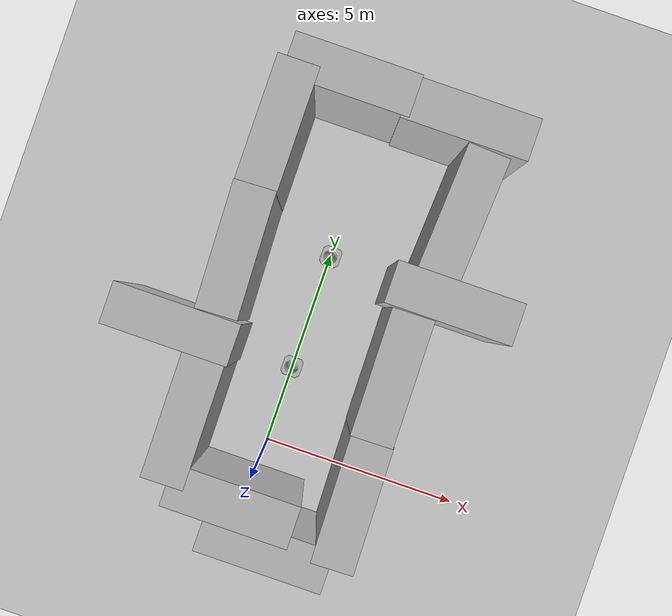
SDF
<sdf version="1.7">
 <world name="default">
  <light name="sun" type="directional">
   <pose>0 0 10 0 -0 0</pose>
   <diffuse>0.8 0.8 0.8 1</diffuse>
   <specular>0.2 0.2 0.2 1</specular>
   <attenuation>
    <range>1000</range>
    <constant>0.9</constant>
    <linear>0.01</linear>
    <quadratic>0.001</quadratic>
   </attenuation>
   <direction>-0.5 0.1 -0.9</direction>
   <spot><inner_angle>0</inner_angle><outer_angle>0</outer_angle><falloff>0</falloff></spot>
  </light>
  <model name="ground_plane">
   <static>1</static>
   <link name="link">
    <collision name="collision">
     <geometry><plane><normal>0 0 1</normal><size>100 100</size></plane></geometry>
     <surface>
      <contact><collide_bitmask>65535</collide_bitmask></contact>
      <friction><ode><mu>100</mu><mu2>50</mu2></ode></friction>
     </surface>
    </collision>
    <visual name="visual">
     <cast_shadows>0</cast_shadows>
     <geometry><plane><normal>0 0 1</normal><size>100 100</size></plane></geometry>
     <material>
      <script><uri>file://media/materials/scripts/gazebo.material</uri><name>Gazebo/Grey</name></script>
     </material>
    </visual>
   </link>
  </model>
  <gravity>0 0 -9.8</gravity>
  <magnetic_field>6e-06 2.3e-05 -4.2e-05</magnetic_field>
  <atmosphere type="adiabatic"/>
  <physics type="ode">
   <max_step_size>0.001</max_step_size>
   <real_time_factor>1</real_time_factor>
   <real_time_update_rate>1000</real_time_update_rate>
  </physics>
  <scene><ambient>0.4 0.4 0.4 1</ambient><background>0.7 0.7 0.7 1</background><shadows>1</shadows></scene>
  <spherical_coordinates>
   <surface_model>EARTH_WGS84</surface_model>
   <latitude_deg>0</latitude_deg>
   <longitude_deg>0</longitude_deg>
   <elevation>0</elevation>
   <heading_deg>0</heading_deg>
  </spherical_coordinates>
  <model name="brick_box_3x1x3">
   <static>1</static>
   <link name="chassis">
    <pose>0 0 1.5 0 -0 0</pose>
    <collision name="collision"><geometry><box><size>3 1 3</size></box></geometry></collision>
    <visual name="visual">
     <geometry><mesh><uri>model://brick_box_3x1x3/meshes/simple_box.dae</uri><scale>3 1 3</scale></mesh></geometry>
     <material>
      <script>
       <uri>model://brick_box_3x1x3/materials/scripts</uri>
       <uri>model://brick_box_3x1x3/materials/textures</uri>
       <name>BrickBox/Diffuse</name>
      </script>
     </material>
    </visual>
   </link>
   <pose>-2.84043 2.20384 0 0 -0 0</pose>
  </model>
  <model name="brick_box_3x1x3_0">
   <static>1</static>
   <link name="chassis">
    <pose>0 0 1.5 0 -0 0</pose>
    <collision name="collision"><geometry><box><size>3 1 3</size></box></geometry></collision>
    <visual name="visual">
     <geometry><mesh><uri>model://brick_box_3x1x3/meshes/simple_box.dae</uri><scale>3 1 3</scale></mesh></geometry>
     <material>
      <script>
       <uri>model://brick_box_3x1x3/materials/scripts</uri>
       <uri>model://brick_box_3x1x3/materials/textures</uri>
       <name>BrickBox/Diffuse</name>
      </script>
     </material>
    </visual>
   </link>
   <pose>2.99055 4.70508 0 0 -0 0</pose>
  </model>
  <model name="brick_box_3x1x3_1">
   <static>1</static>
   <link name="chassis">
    <pose>0 0 1.5 0 -0 0</pose>
    <collision name="collision"><geometry><box><size>3 1 3</size></box></geometry></collision>
    <visual name="visual">
     <geometry><mesh><uri>model://brick_box_3x1x3/meshes/simple_box.dae</uri><scale>3 1 3</scale></mesh></geometry>
     <material>
      <script>
       <uri>model://brick_box_3x1x3/materials/scripts</uri>
       <uri>model://brick_box_3x1x3/materials/textures</uri>
       <name>BrickBox/Diffuse</name>
      </script>
     </material>
    </visual>
   </link>
   <pose>-1.87724 0.284391 0 0 0 -1.56112</pose>
  </model>
  <model name="brick_box_3x1x3_2">
   <static>1</static>
   <link name="chassis">
    <pose>0 0 1.5 0 -0 0</pose>
    <collision name="collision"><geometry><box><size>3 1 3</size></box></geometry></collision>
    <visual name="visual">
     <geometry><mesh><uri>model://brick_box_3x1x3/meshes/simple_box.dae</uri><scale>3 1 3</scale></mesh></geometry>
     <material>
      <script>
       <uri>model://brick_box_3x1x3/materials/scripts</uri>
       <uri>model://brick_box_3x1x3/materials/textures</uri>
       <name>BrickBox/Diffuse</name>
      </script>
     </material>
    </visual>
   </link>
   <pose>-2.00666 4.23071 0 0 0 -1.53454</pose>
  </model>
  <model name="brick_box_3x1x3_3">
   <static>1</static>
   <link name="chassis">
    <pose>0 0 1.5 0 -0 0</pose>
    <collision name="collision"><geometry><box><size>3 1 3</size></box></geometry></collision>
    <visual name="visual">
     <geometry><mesh><uri>model://brick_box_3x1x3/meshes/simple_box.dae</uri><scale>3 1 3</scale></mesh></geometry>
     <material>
      <script>
       <uri>model://brick_box_3x1x3/materials/scripts</uri>
       <uri>model://brick_box_3x1x3/materials/textures</uri>
       <name>BrickBox/Diffuse</name>
      </script>
     </material>
    </visual>
   </link>
   <pose>-2.04838 7.17271 0 0 0 -1.57014</pose>
  </model>
  <model name="brick_box_3x1x3_5">
   <static>1</static>
   <link name="chassis">
    <pose>0 0 1.5 0 -0 0</pose>
    <collision name="collision"><geometry><box><size>3 1 3</size></box></geometry></collision>
    <visual name="visual">
     <geometry><mesh><uri>model://brick_box_3x1x3/meshes/simple_box.dae</uri><scale>3 1 3</scale></mesh></geometry>
     <material>
      <script>
       <uri>model://brick_box_3x1x3/materials/scripts</uri>
       <uri>model://brick_box_3x1x3/materials/textures</uri>
       <name>BrickBox/Diffuse</name>
      </script>
     </material>
    </visual>
   </link>
   <pose>2.22298 2.67876 0 0 0 -1.55724</pose>
  </model>
  <model name="brick_box_3x1x3_6">
   <static>1</static>
   <link name="chassis">
    <pose>0 0 1.5 0 -0 0</pose>
    <collision name="collision"><geometry><box><size>3 1 3</size></box></geometry></collision>
    <visual name="visual">
     <geometry><mesh><uri>model://brick_box_3x1x3/meshes/simple_box.dae</uri><scale>3 1 3</scale></mesh></geometry>
     <material>
      <script>
       <uri>model://brick_box_3x1x3/materials/scripts</uri>
       <uri>model://brick_box_3x1x3/materials/textures</uri>
       <name>BrickBox/Diffuse</name>
      </script>
     </material>
    </visual>
   </link>
   <pose>2.29269 -0.273887 0 0 0 -1.54685</pose>
  </model>
  <model name="brick_box_3x1x3_4">
   <static>1</static>
   <link name="chassis">
    <pose>0 0 1.5 0 -0 0</pose>
    <collision name="collision"><geometry><box><size>3 1 3</size></box></geometry></collision>
    <visual name="visual">
     <geometry><mesh><uri>model://brick_box_3x1x3/meshes/simple_box.dae</uri><scale>3 1 3</scale></mesh></geometry>
     <material>
      <script>
       <uri>model://brick_box_3x1x3/materials/scripts</uri>
       <uri>model://brick_box_3x1x3/materials/textures</uri>
       <name>BrickBox/Diffuse</name>
      </script>
     </material>
    </visual>
   </link>
   <pose>-0.256963 -1.18605 0 0 -0 0</pose>
  </model>
  <model name="brick_box_3x1x3_7">
   <static>1</static>
   <link name="chassis">
    <pose>0 0 1.5 0 -0 0</pose>
    <collision name="collision"><geometry><box><size>3 1 3</size></box></geometry></collision>
    <visual name="visual">
     <geometry><mesh><uri>model://brick_box_3x1x3/meshes/simple_box.dae</uri><scale>3 1 3</scale></mesh></geometry>
     <material>
      <script>
       <uri>model://brick_box_3x1x3/materials/scripts</uri>
       <uri>model://brick_box_3x1x3/materials/textures</uri>
       <name>BrickBox/Diffuse</name>
      </script>
     </material>
    </visual>
   </link>
   <pose>0.768811 -1.88064 0 0 -0 0</pose>
  </model>
  <model name="brick_box_3x1x3_8">
   <static>1</static>
   <link name="chassis">
    <pose>0 0 1.5 0 -0 0</pose>
    <collision name="collision"><geometry><box><size>3 1 3</size></box></geometry></collision>
    <visual name="visual">
     <geometry><mesh><uri>model://brick_box_3x1x3/meshes/simple_box.dae</uri><scale>3 1 3</scale></mesh></geometry>
     <material>
      <script>
       <uri>model://brick_box_3x1x3/materials/scripts</uri>
       <uri>model://brick_box_3x1x3/materials/textures</uri>
       <name>BrickBox/Diffuse</name>
      </script>
     </material>
    </visual>
   </link>
   <pose>-0.825259 8.7547 0 0 -0 0</pose>
  </model>
  <model name="brick_box_3x1x3_9">
   <static>1</static>
   <link name="chassis">
    <pose>0 0 1.5 0 -0 0</pose>
    <collision name="collision"><geometry><box><size>3 1 3</size></box></geometry></collision>
    <visual name="visual">
     <geometry><mesh><uri>model://brick_box_3x1x3/meshes/simple_box.dae</uri><scale>3 1 3</scale></mesh></geometry>
     <material>
      <script>
       <uri>model://brick_box_3x1x3/materials/scripts</uri>
       <uri>model://brick_box_3x1x3/materials/textures</uri>
       <name>BrickBox/Diffuse</name>
      </script>
     </material>
    </visual>
   </link>
   <pose>1.98542 8.69534 0 0 -0 0</pose>
  </model>
  <model name="brick_box_3x1x3_10">
   <static>1</static>
   <link name="chassis">
    <pose>0 0 1.5 0 -0 0</pose>
    <collision name="collision"><geometry><box><size>3 1 3</size></box></geometry></collision>
    <visual name="visual">
     <geometry><mesh><uri>model://brick_box_3x1x3/meshes/simple_box.dae</uri><scale>3 1 3</scale></mesh></geometry>
     <material>
      <script>
       <uri>model://brick_box_3x1x3/materials/scripts</uri>
       <uri>model://brick_box_3x1x3/materials/textures</uri>
       <name>BrickBox/Diffuse</name>
      </script>
     </material>
    </visual>
   </link>
   <pose>2.52717 6.65098 0 0 0 -1.62814</pose>
  </model>
  <model name="Construction Cone">
   <link name="link">
    <collision name="collision">
     <geometry>
      <mesh><scale>10 10 10</scale><uri>model://construction_cone/meshes/construction_cone.dae</uri></mesh>
     </geometry>
    </collision>
    <visual name="visual">
     <geometry>
      <mesh><scale>10 10 10</scale><uri>model://construction_cone/meshes/construction_cone.dae</uri></mesh>
     </geometry>
    </visual>
    <inertial>
     <inertia><ixx>1</ixx><ixy>0</ixy><ixz>0</ixz><iyy>1</iyy><iyz>0</iyz><izz>1</izz></inertia>
     <mass>1</mass>
    </inertial>
   </link>
   <pose>-0.010511 1.97375 -0 0 -0 0</pose>
  </model>
  <model name="Construction Cone_0">
   <link name="link">
    <collision name="collision">
     <geometry>
      <mesh><scale>10 10 10</scale><uri>model://construction_cone/meshes/construction_cone.dae</uri></mesh>
     </geometry>
    </collision>
    <visual name="visual">
     <geometry>
      <mesh><scale>10 10 10</scale><uri>model://construction_cone/meshes/construction_cone.dae</uri></mesh>
     </geometry>
    </visual>
    <inertial>
     <inertia><ixx>1</ixx><ixy>0</ixy><ixz>0</ixz><iyy>1</iyy><iyz>0</iyz><izz>1</izz></inertia>
     <mass>1</mass>
    </inertial>
   </link>
   <pose>0.010587 4.97702 -0 0 -1e-06 0</pose>
  </model>
 </world>
</sdf>
